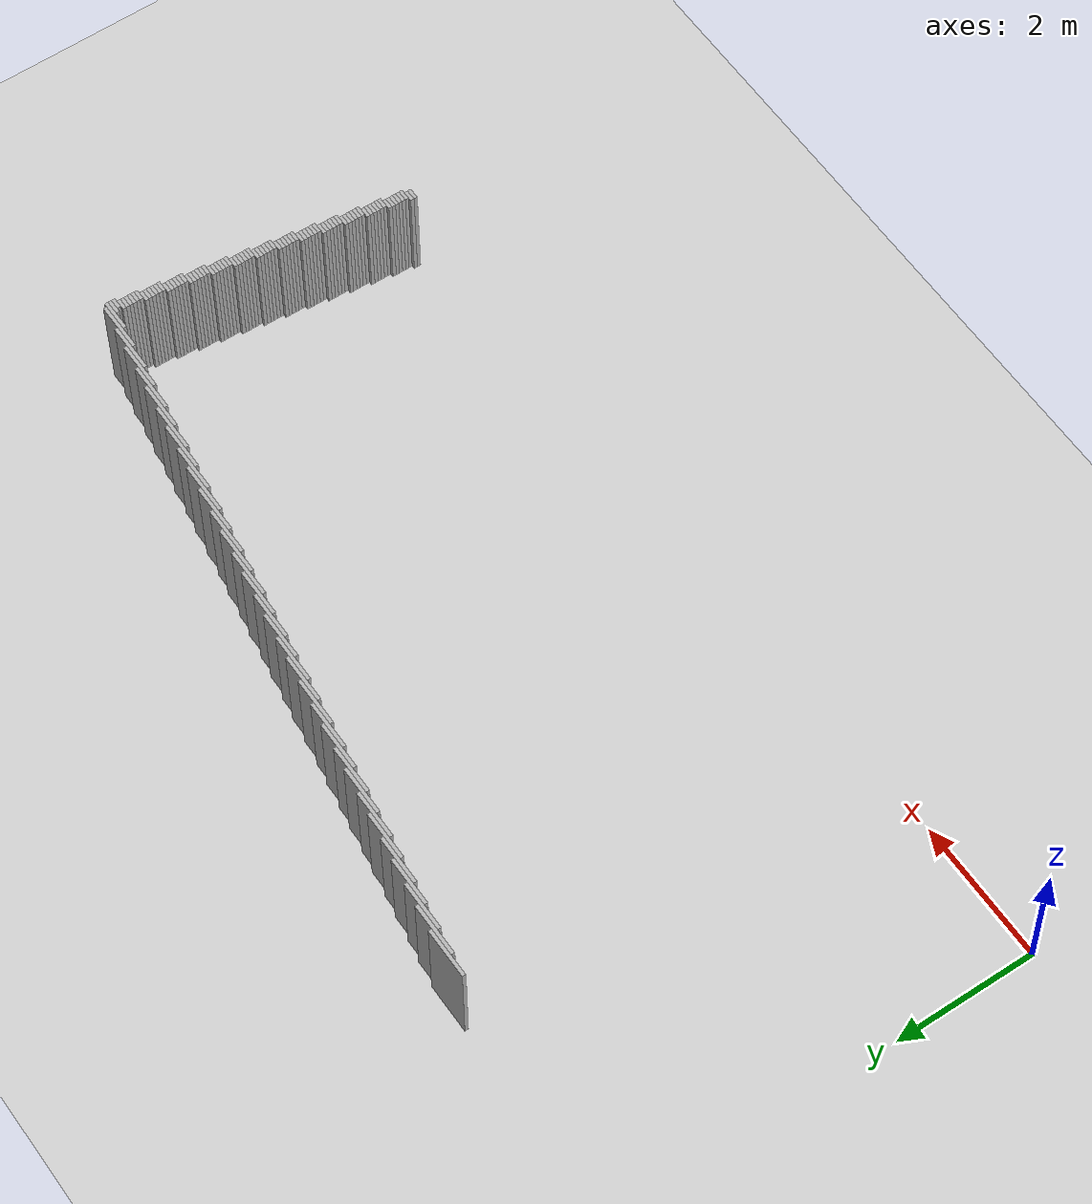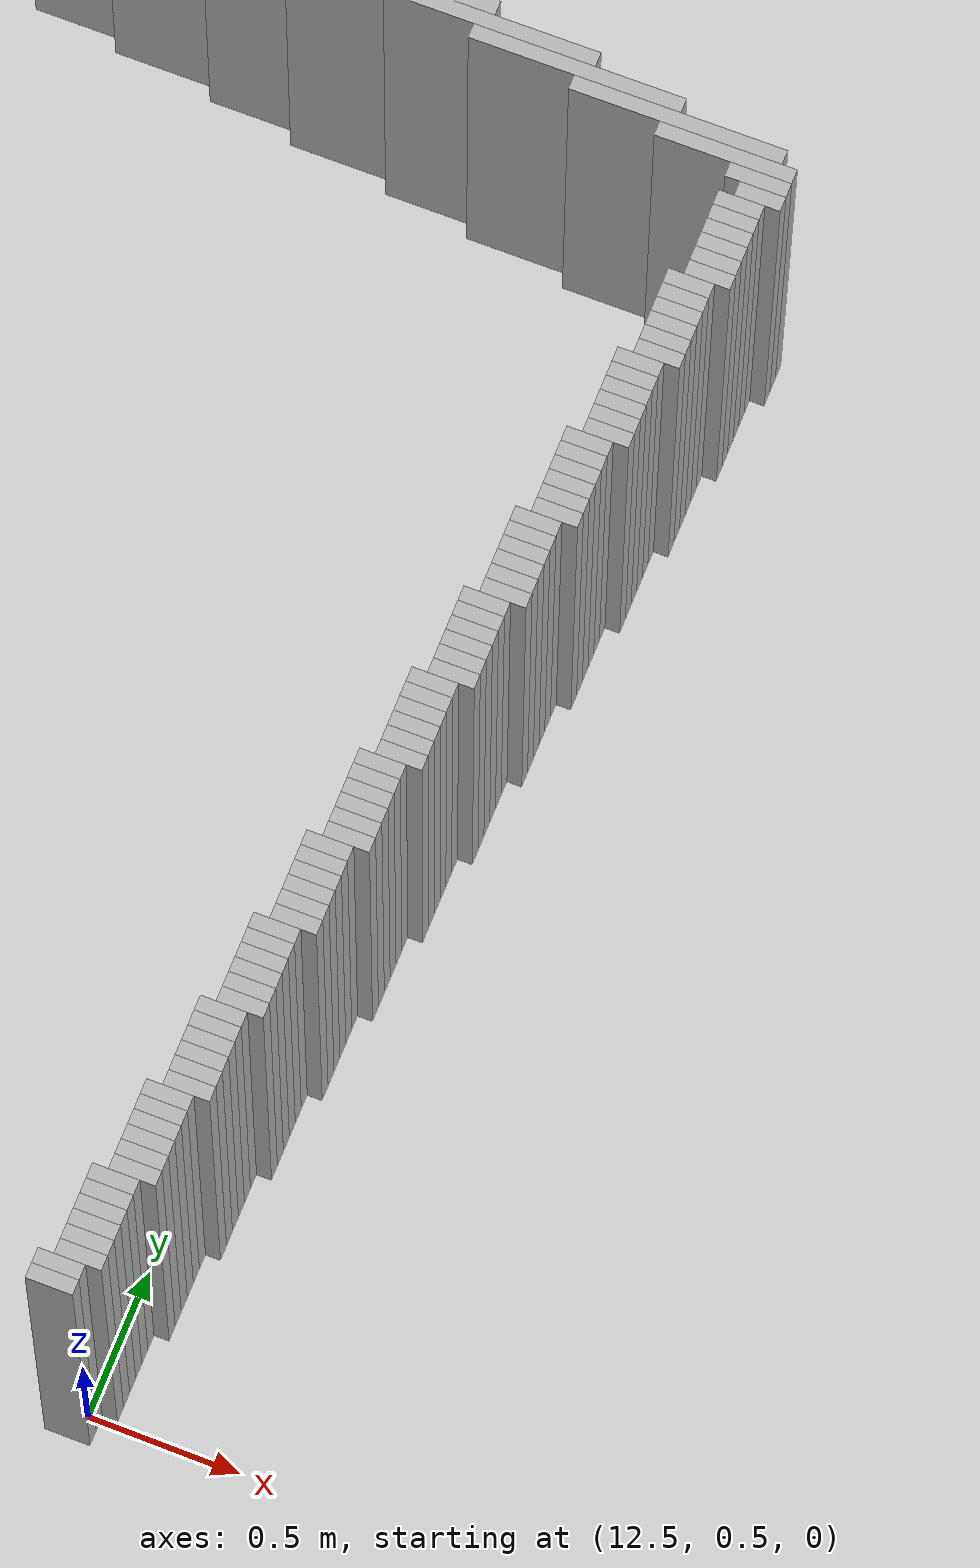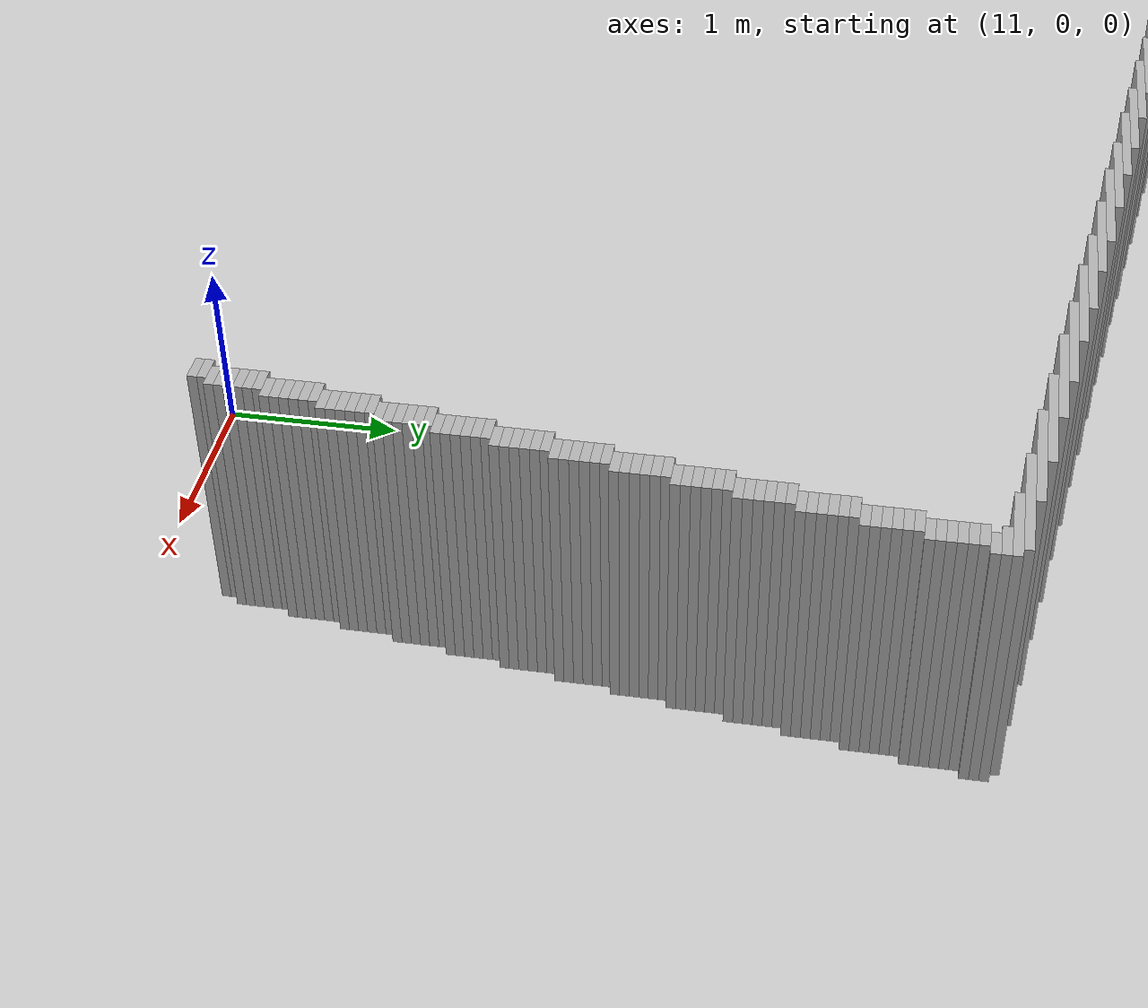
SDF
<sdf version="1.6">
 <world name="df_walled">
  <include><uri>model://sun</uri></include>
  <include><uri>model://ground_plane</uri></include>
  <model name="df_walls">
   <static>true</static>
   <link name="wall_00068">
    <pose>3.3390 6.0410 0.7500 0 0 0</pose>
    <collision name="col"><geometry><box><size>0.7000 0.0500 1.5000</size></box></geometry></collision>
    <visual name="vis">
     <geometry><box><size>0.7000 0.0500 1.5000</size></box></geometry>
     <material><ambient>0.5 0.5 0.5 1</ambient><diffuse>0.7 0.7 0.7 1</diffuse></material>
    </visual>
   </link>
   <link name="wall_00071">
    <pose>3.6640 5.9910 0.7500 0 0 0</pose>
    <collision name="col"><geometry><box><size>0.7500 0.0500 1.5000</size></box></geometry></collision>
    <visual name="vis">
     <geometry><box><size>0.7500 0.0500 1.5000</size></box></geometry>
     <material><ambient>0.5 0.5 0.5 1</ambient><diffuse>0.7 0.7 0.7 1</diffuse></material>
    </visual>
   </link>
   <link name="wall_00074">
    <pose>3.9890 5.9410 0.7500 0 0 0</pose>
    <collision name="col"><geometry><box><size>0.7000 0.0500 1.5000</size></box></geometry></collision>
    <visual name="vis">
     <geometry><box><size>0.7000 0.0500 1.5000</size></box></geometry>
     <material><ambient>0.5 0.5 0.5 1</ambient><diffuse>0.7 0.7 0.7 1</diffuse></material>
    </visual>
   </link>
   <link name="wall_00077">
    <pose>4.3390 5.8910 0.7500 0 0 0</pose>
    <collision name="col"><geometry><box><size>0.7000 0.0500 1.5000</size></box></geometry></collision>
    <visual name="vis">
     <geometry><box><size>0.7000 0.0500 1.5000</size></box></geometry>
     <material><ambient>0.5 0.5 0.5 1</ambient><diffuse>0.7 0.7 0.7 1</diffuse></material>
    </visual>
   </link>
   <link name="wall_00080">
    <pose>4.6390 5.8410 0.7500 0 0 0</pose>
    <collision name="col"><geometry><box><size>0.7000 0.0500 1.5000</size></box></geometry></collision>
    <visual name="vis">
     <geometry><box><size>0.7000 0.0500 1.5000</size></box></geometry>
     <material><ambient>0.5 0.5 0.5 1</ambient><diffuse>0.7 0.7 0.7 1</diffuse></material>
    </visual>
   </link>
   <link name="wall_00083">
    <pose>4.9890 5.7910 0.7500 0 0 0</pose>
    <collision name="col"><geometry><box><size>0.7000 0.0500 1.5000</size></box></geometry></collision>
    <visual name="vis">
     <geometry><box><size>0.7000 0.0500 1.5000</size></box></geometry>
     <material><ambient>0.5 0.5 0.5 1</ambient><diffuse>0.7 0.7 0.7 1</diffuse></material>
    </visual>
   </link>
   <link name="wall_00086">
    <pose>5.2890 5.7410 0.7500 0 0 0</pose>
    <collision name="col"><geometry><box><size>0.7000 0.0500 1.5000</size></box></geometry></collision>
    <visual name="vis">
     <geometry><box><size>0.7000 0.0500 1.5000</size></box></geometry>
     <material><ambient>0.5 0.5 0.5 1</ambient><diffuse>0.7 0.7 0.7 1</diffuse></material>
    </visual>
   </link>
   <link name="wall_00089">
    <pose>5.6390 5.6910 0.7500 0 0 0</pose>
    <collision name="col"><geometry><box><size>0.7000 0.0500 1.5000</size></box></geometry></collision>
    <visual name="vis">
     <geometry><box><size>0.7000 0.0500 1.5000</size></box></geometry>
     <material><ambient>0.5 0.5 0.5 1</ambient><diffuse>0.7 0.7 0.7 1</diffuse></material>
    </visual>
   </link>
   <link name="wall_00092">
    <pose>5.9390 5.6410 0.7500 0 0 0</pose>
    <collision name="col"><geometry><box><size>0.7000 0.0500 1.5000</size></box></geometry></collision>
    <visual name="vis">
     <geometry><box><size>0.7000 0.0500 1.5000</size></box></geometry>
     <material><ambient>0.5 0.5 0.5 1</ambient><diffuse>0.7 0.7 0.7 1</diffuse></material>
    </visual>
   </link>
   <link name="wall_00095">
    <pose>6.2890 5.5910 0.7500 0 0 0</pose>
    <collision name="col"><geometry><box><size>0.7000 0.0500 1.5000</size></box></geometry></collision>
    <visual name="vis">
     <geometry><box><size>0.7000 0.0500 1.5000</size></box></geometry>
     <material><ambient>0.5 0.5 0.5 1</ambient><diffuse>0.7 0.7 0.7 1</diffuse></material>
    </visual>
   </link>
   <link name="wall_00098">
    <pose>6.5890 5.5410 0.7500 0 0 0</pose>
    <collision name="col"><geometry><box><size>0.7000 0.0500 1.5000</size></box></geometry></collision>
    <visual name="vis">
     <geometry><box><size>0.7000 0.0500 1.5000</size></box></geometry>
     <material><ambient>0.5 0.5 0.5 1</ambient><diffuse>0.7 0.7 0.7 1</diffuse></material>
    </visual>
   </link>
   <link name="wall_00101">
    <pose>6.9390 5.4910 0.7500 0 0 0</pose>
    <collision name="col"><geometry><box><size>0.7000 0.0500 1.5000</size></box></geometry></collision>
    <visual name="vis">
     <geometry><box><size>0.7000 0.0500 1.5000</size></box></geometry>
     <material><ambient>0.5 0.5 0.5 1</ambient><diffuse>0.7 0.7 0.7 1</diffuse></material>
    </visual>
   </link>
   <link name="wall_00104">
    <pose>7.2890 5.4410 0.7500 0 0 0</pose>
    <collision name="col"><geometry><box><size>0.7000 0.0500 1.5000</size></box></geometry></collision>
    <visual name="vis">
     <geometry><box><size>0.7000 0.0500 1.5000</size></box></geometry>
     <material><ambient>0.5 0.5 0.5 1</ambient><diffuse>0.7 0.7 0.7 1</diffuse></material>
    </visual>
   </link>
   <link name="wall_00107">
    <pose>7.5890 5.3910 0.7500 0 0 0</pose>
    <collision name="col"><geometry><box><size>0.7000 0.0500 1.5000</size></box></geometry></collision>
    <visual name="vis">
     <geometry><box><size>0.7000 0.0500 1.5000</size></box></geometry>
     <material><ambient>0.5 0.5 0.5 1</ambient><diffuse>0.7 0.7 0.7 1</diffuse></material>
    </visual>
   </link>
   <link name="wall_00110">
    <pose>7.9390 5.3410 0.7500 0 0 0</pose>
    <collision name="col"><geometry><box><size>0.7000 0.0500 1.5000</size></box></geometry></collision>
    <visual name="vis">
     <geometry><box><size>0.7000 0.0500 1.5000</size></box></geometry>
     <material><ambient>0.5 0.5 0.5 1</ambient><diffuse>0.7 0.7 0.7 1</diffuse></material>
    </visual>
   </link>
   <link name="wall_00113">
    <pose>8.2390 5.2910 0.7500 0 0 0</pose>
    <collision name="col"><geometry><box><size>0.7000 0.0500 1.5000</size></box></geometry></collision>
    <visual name="vis">
     <geometry><box><size>0.7000 0.0500 1.5000</size></box></geometry>
     <material><ambient>0.5 0.5 0.5 1</ambient><diffuse>0.7 0.7 0.7 1</diffuse></material>
    </visual>
   </link>
   <link name="wall_00116">
    <pose>8.5890 5.2410 0.7500 0 0 0</pose>
    <collision name="col"><geometry><box><size>0.7000 0.0500 1.5000</size></box></geometry></collision>
    <visual name="vis">
     <geometry><box><size>0.7000 0.0500 1.5000</size></box></geometry>
     <material><ambient>0.5 0.5 0.5 1</ambient><diffuse>0.7 0.7 0.7 1</diffuse></material>
    </visual>
   </link>
   <link name="wall_00119">
    <pose>8.8890 5.1910 0.7500 0 0 0</pose>
    <collision name="col"><geometry><box><size>0.7000 0.0500 1.5000</size></box></geometry></collision>
    <visual name="vis">
     <geometry><box><size>0.7000 0.0500 1.5000</size></box></geometry>
     <material><ambient>0.5 0.5 0.5 1</ambient><diffuse>0.7 0.7 0.7 1</diffuse></material>
    </visual>
   </link>
   <link name="wall_00122">
    <pose>9.2390 5.1410 0.7500 0 0 0</pose>
    <collision name="col"><geometry><box><size>0.7000 0.0500 1.5000</size></box></geometry></collision>
    <visual name="vis">
     <geometry><box><size>0.7000 0.0500 1.5000</size></box></geometry>
     <material><ambient>0.5 0.5 0.5 1</ambient><diffuse>0.7 0.7 0.7 1</diffuse></material>
    </visual>
   </link>
   <link name="wall_00125">
    <pose>9.5390 5.0910 0.7500 0 0 0</pose>
    <collision name="col"><geometry><box><size>0.7000 0.0500 1.5000</size></box></geometry></collision>
    <visual name="vis">
     <geometry><box><size>0.7000 0.0500 1.5000</size></box></geometry>
     <material><ambient>0.5 0.5 0.5 1</ambient><diffuse>0.7 0.7 0.7 1</diffuse></material>
    </visual>
   </link>
   <link name="wall_00128">
    <pose>9.8890 5.0410 0.7500 0 0 0</pose>
    <collision name="col"><geometry><box><size>0.7000 0.0500 1.5000</size></box></geometry></collision>
    <visual name="vis">
     <geometry><box><size>0.7000 0.0500 1.5000</size></box></geometry>
     <material><ambient>0.5 0.5 0.5 1</ambient><diffuse>0.7 0.7 0.7 1</diffuse></material>
    </visual>
   </link>
   <link name="wall_00131">
    <pose>10.2140 4.9910 0.7500 0 0 0</pose>
    <collision name="col"><geometry><box><size>0.7500 0.0500 1.5000</size></box></geometry></collision>
    <visual name="vis">
     <geometry><box><size>0.7500 0.0500 1.5000</size></box></geometry>
     <material><ambient>0.5 0.5 0.5 1</ambient><diffuse>0.7 0.7 0.7 1</diffuse></material>
    </visual>
   </link>
   <link name="wall_00134">
    <pose>10.5390 4.9410 0.7500 0 0 0</pose>
    <collision name="col"><geometry><box><size>0.7000 0.0500 1.5000</size></box></geometry></collision>
    <visual name="vis">
     <geometry><box><size>0.7000 0.0500 1.5000</size></box></geometry>
     <material><ambient>0.5 0.5 0.5 1</ambient><diffuse>0.7 0.7 0.7 1</diffuse></material>
    </visual>
   </link>
   <link name="wall_00137">
    <pose>10.8890 4.8910 0.7500 0 0 0</pose>
    <collision name="col"><geometry><box><size>0.7000 0.0500 1.5000</size></box></geometry></collision>
    <visual name="vis">
     <geometry><box><size>0.7000 0.0500 1.5000</size></box></geometry>
     <material><ambient>0.5 0.5 0.5 1</ambient><diffuse>0.7 0.7 0.7 1</diffuse></material>
    </visual>
   </link>
   <link name="wall_00140">
    <pose>11.1890 4.8410 0.7500 0 0 0</pose>
    <collision name="col"><geometry><box><size>0.7000 0.0500 1.5000</size></box></geometry></collision>
    <visual name="vis">
     <geometry><box><size>0.7000 0.0500 1.5000</size></box></geometry>
     <material><ambient>0.5 0.5 0.5 1</ambient><diffuse>0.7 0.7 0.7 1</diffuse></material>
    </visual>
   </link>
   <link name="wall_00143">
    <pose>11.5390 4.7910 0.7500 0 0 0</pose>
    <collision name="col"><geometry><box><size>0.7000 0.0500 1.5000</size></box></geometry></collision>
    <visual name="vis">
     <geometry><box><size>0.7000 0.0500 1.5000</size></box></geometry>
     <material><ambient>0.5 0.5 0.5 1</ambient><diffuse>0.7 0.7 0.7 1</diffuse></material>
    </visual>
   </link>
   <link name="wall_00146">
    <pose>11.8390 4.7410 0.7500 0 0 0</pose>
    <collision name="col"><geometry><box><size>0.7000 0.0500 1.5000</size></box></geometry></collision>
    <visual name="vis">
     <geometry><box><size>0.7000 0.0500 1.5000</size></box></geometry>
     <material><ambient>0.5 0.5 0.5 1</ambient><diffuse>0.7 0.7 0.7 1</diffuse></material>
    </visual>
   </link>
   <link name="wall_00149">
    <pose>12.1890 4.6910 0.7500 0 0 0</pose>
    <collision name="col"><geometry><box><size>0.7000 0.0500 1.5000</size></box></geometry></collision>
    <visual name="vis">
     <geometry><box><size>0.7000 0.0500 1.5000</size></box></geometry>
     <material><ambient>0.5 0.5 0.5 1</ambient><diffuse>0.7 0.7 0.7 1</diffuse></material>
    </visual>
   </link>
   <link name="wall_00152">
    <pose>12.4890 4.6410 0.7500 0 0 0</pose>
    <collision name="col"><geometry><box><size>0.7000 0.0500 1.5000</size></box></geometry></collision>
    <visual name="vis">
     <geometry><box><size>0.7000 0.0500 1.5000</size></box></geometry>
     <material><ambient>0.5 0.5 0.5 1</ambient><diffuse>0.7 0.7 0.7 1</diffuse></material>
    </visual>
   </link>
   <link name="wall_00155">
    <pose>12.8390 4.5910 0.7500 0 0 0</pose>
    <collision name="col"><geometry><box><size>0.7000 0.0500 1.5000</size></box></geometry></collision>
    <visual name="vis">
     <geometry><box><size>0.7000 0.0500 1.5000</size></box></geometry>
     <material><ambient>0.5 0.5 0.5 1</ambient><diffuse>0.7 0.7 0.7 1</diffuse></material>
    </visual>
   </link>
   <link name="wall_00158">
    <pose>13.0140 4.5410 0.7500 0 0 0</pose>
    <collision name="col"><geometry><box><size>0.4500 0.0500 1.5000</size></box></geometry></collision>
    <visual name="vis">
     <geometry><box><size>0.4500 0.0500 1.5000</size></box></geometry>
     <material><ambient>0.5 0.5 0.5 1</ambient><diffuse>0.7 0.7 0.7 1</diffuse></material>
    </visual>
   </link>
   <link name="wall_00161">
    <pose>13.1390 4.4910 0.7500 0 0 0</pose>
    <collision name="col"><geometry><box><size>0.2000 0.0500 1.5000</size></box></geometry></collision>
    <visual name="vis">
     <geometry><box><size>0.2000 0.0500 1.5000</size></box></geometry>
     <material><ambient>0.5 0.5 0.5 1</ambient><diffuse>0.7 0.7 0.7 1</diffuse></material>
    </visual>
   </link>
   <link name="wall_00164">
    <pose>13.1640 4.4410 0.7500 0 0 0</pose>
    <collision name="col"><geometry><box><size>0.1500 0.0500 1.5000</size></box></geometry></collision>
    <visual name="vis">
     <geometry><box><size>0.1500 0.0500 1.5000</size></box></geometry>
     <material><ambient>0.5 0.5 0.5 1</ambient><diffuse>0.7 0.7 0.7 1</diffuse></material>
    </visual>
   </link>
   <link name="wall_00167">
    <pose>13.1140 4.3910 0.7500 0 0 0</pose>
    <collision name="col"><geometry><box><size>0.1500 0.0500 1.5000</size></box></geometry></collision>
    <visual name="vis">
     <geometry><box><size>0.1500 0.0500 1.5000</size></box></geometry>
     <material><ambient>0.5 0.5 0.5 1</ambient><diffuse>0.7 0.7 0.7 1</diffuse></material>
    </visual>
   </link>
   <link name="wall_00170">
    <pose>13.1140 4.3410 0.7500 0 0 0</pose>
    <collision name="col"><geometry><box><size>0.1500 0.0500 1.5000</size></box></geometry></collision>
    <visual name="vis">
     <geometry><box><size>0.1500 0.0500 1.5000</size></box></geometry>
     <material><ambient>0.5 0.5 0.5 1</ambient><diffuse>0.7 0.7 0.7 1</diffuse></material>
    </visual>
   </link>
   <link name="wall_00172">
    <pose>13.1140 4.2910 0.7500 0 0 0</pose>
    <collision name="col"><geometry><box><size>0.1500 0.0500 1.5000</size></box></geometry></collision>
    <visual name="vis">
     <geometry><box><size>0.1500 0.0500 1.5000</size></box></geometry>
     <material><ambient>0.5 0.5 0.5 1</ambient><diffuse>0.7 0.7 0.7 1</diffuse></material>
    </visual>
   </link>
   <link name="wall_00174">
    <pose>13.1140 4.2410 0.7500 0 0 0</pose>
    <collision name="col"><geometry><box><size>0.1500 0.0500 1.5000</size></box></geometry></collision>
    <visual name="vis">
     <geometry><box><size>0.1500 0.0500 1.5000</size></box></geometry>
     <material><ambient>0.5 0.5 0.5 1</ambient><diffuse>0.7 0.7 0.7 1</diffuse></material>
    </visual>
   </link>
   <link name="wall_00176">
    <pose>13.1140 4.1910 0.7500 0 0 0</pose>
    <collision name="col"><geometry><box><size>0.1500 0.0500 1.5000</size></box></geometry></collision>
    <visual name="vis">
     <geometry><box><size>0.1500 0.0500 1.5000</size></box></geometry>
     <material><ambient>0.5 0.5 0.5 1</ambient><diffuse>0.7 0.7 0.7 1</diffuse></material>
    </visual>
   </link>
   <link name="wall_00178">
    <pose>13.1140 4.1410 0.7500 0 0 0</pose>
    <collision name="col"><geometry><box><size>0.1500 0.0500 1.5000</size></box></geometry></collision>
    <visual name="vis">
     <geometry><box><size>0.1500 0.0500 1.5000</size></box></geometry>
     <material><ambient>0.5 0.5 0.5 1</ambient><diffuse>0.7 0.7 0.7 1</diffuse></material>
    </visual>
   </link>
   <link name="wall_00180">
    <pose>13.0640 4.0910 0.7500 0 0 0</pose>
    <collision name="col"><geometry><box><size>0.1500 0.0500 1.5000</size></box></geometry></collision>
    <visual name="vis">
     <geometry><box><size>0.1500 0.0500 1.5000</size></box></geometry>
     <material><ambient>0.5 0.5 0.5 1</ambient><diffuse>0.7 0.7 0.7 1</diffuse></material>
    </visual>
   </link>
   <link name="wall_00182">
    <pose>13.0640 4.0410 0.7500 0 0 0</pose>
    <collision name="col"><geometry><box><size>0.1500 0.0500 1.5000</size></box></geometry></collision>
    <visual name="vis">
     <geometry><box><size>0.1500 0.0500 1.5000</size></box></geometry>
     <material><ambient>0.5 0.5 0.5 1</ambient><diffuse>0.7 0.7 0.7 1</diffuse></material>
    </visual>
   </link>
   <link name="wall_00184">
    <pose>13.0640 3.9910 0.7500 0 0 0</pose>
    <collision name="col"><geometry><box><size>0.1500 0.0500 1.5000</size></box></geometry></collision>
    <visual name="vis">
     <geometry><box><size>0.1500 0.0500 1.5000</size></box></geometry>
     <material><ambient>0.5 0.5 0.5 1</ambient><diffuse>0.7 0.7 0.7 1</diffuse></material>
    </visual>
   </link>
   <link name="wall_00186">
    <pose>13.0640 3.9410 0.7500 0 0 0</pose>
    <collision name="col"><geometry><box><size>0.1500 0.0500 1.5000</size></box></geometry></collision>
    <visual name="vis">
     <geometry><box><size>0.1500 0.0500 1.5000</size></box></geometry>
     <material><ambient>0.5 0.5 0.5 1</ambient><diffuse>0.7 0.7 0.7 1</diffuse></material>
    </visual>
   </link>
   <link name="wall_00188">
    <pose>13.0640 3.8910 0.7500 0 0 0</pose>
    <collision name="col"><geometry><box><size>0.1500 0.0500 1.5000</size></box></geometry></collision>
    <visual name="vis">
     <geometry><box><size>0.1500 0.0500 1.5000</size></box></geometry>
     <material><ambient>0.5 0.5 0.5 1</ambient><diffuse>0.7 0.7 0.7 1</diffuse></material>
    </visual>
   </link>
   <link name="wall_00190">
    <pose>13.0640 3.8410 0.7500 0 0 0</pose>
    <collision name="col"><geometry><box><size>0.1500 0.0500 1.5000</size></box></geometry></collision>
    <visual name="vis">
     <geometry><box><size>0.1500 0.0500 1.5000</size></box></geometry>
     <material><ambient>0.5 0.5 0.5 1</ambient><diffuse>0.7 0.7 0.7 1</diffuse></material>
    </visual>
   </link>
   <link name="wall_00192">
    <pose>13.0140 3.7910 0.7500 0 0 0</pose>
    <collision name="col"><geometry><box><size>0.1500 0.0500 1.5000</size></box></geometry></collision>
    <visual name="vis">
     <geometry><box><size>0.1500 0.0500 1.5000</size></box></geometry>
     <material><ambient>0.5 0.5 0.5 1</ambient><diffuse>0.7 0.7 0.7 1</diffuse></material>
    </visual>
   </link>
   <link name="wall_00194">
    <pose>13.0140 3.7410 0.7500 0 0 0</pose>
    <collision name="col"><geometry><box><size>0.1500 0.0500 1.5000</size></box></geometry></collision>
    <visual name="vis">
     <geometry><box><size>0.1500 0.0500 1.5000</size></box></geometry>
     <material><ambient>0.5 0.5 0.5 1</ambient><diffuse>0.7 0.7 0.7 1</diffuse></material>
    </visual>
   </link>
   <link name="wall_00196">
    <pose>13.0140 3.6910 0.7500 0 0 0</pose>
    <collision name="col"><geometry><box><size>0.1500 0.0500 1.5000</size></box></geometry></collision>
    <visual name="vis">
     <geometry><box><size>0.1500 0.0500 1.5000</size></box></geometry>
     <material><ambient>0.5 0.5 0.5 1</ambient><diffuse>0.7 0.7 0.7 1</diffuse></material>
    </visual>
   </link>
   <link name="wall_00198">
    <pose>13.0140 3.6410 0.7500 0 0 0</pose>
    <collision name="col"><geometry><box><size>0.1500 0.0500 1.5000</size></box></geometry></collision>
    <visual name="vis">
     <geometry><box><size>0.1500 0.0500 1.5000</size></box></geometry>
     <material><ambient>0.5 0.5 0.5 1</ambient><diffuse>0.7 0.7 0.7 1</diffuse></material>
    </visual>
   </link>
   <link name="wall_00200">
    <pose>13.0140 3.5910 0.7500 0 0 0</pose>
    <collision name="col"><geometry><box><size>0.1500 0.0500 1.5000</size></box></geometry></collision>
    <visual name="vis">
     <geometry><box><size>0.1500 0.0500 1.5000</size></box></geometry>
     <material><ambient>0.5 0.5 0.5 1</ambient><diffuse>0.7 0.7 0.7 1</diffuse></material>
    </visual>
   </link>
   <link name="wall_00202">
    <pose>13.0140 3.5410 0.7500 0 0 0</pose>
    <collision name="col"><geometry><box><size>0.1500 0.0500 1.5000</size></box></geometry></collision>
    <visual name="vis">
     <geometry><box><size>0.1500 0.0500 1.5000</size></box></geometry>
     <material><ambient>0.5 0.5 0.5 1</ambient><diffuse>0.7 0.7 0.7 1</diffuse></material>
    </visual>
   </link>
   <link name="wall_00204">
    <pose>12.9640 3.4910 0.7500 0 0 0</pose>
    <collision name="col"><geometry><box><size>0.1500 0.0500 1.5000</size></box></geometry></collision>
    <visual name="vis">
     <geometry><box><size>0.1500 0.0500 1.5000</size></box></geometry>
     <material><ambient>0.5 0.5 0.5 1</ambient><diffuse>0.7 0.7 0.7 1</diffuse></material>
    </visual>
   </link>
   <link name="wall_00206">
    <pose>12.9640 3.4410 0.7500 0 0 0</pose>
    <collision name="col"><geometry><box><size>0.1500 0.0500 1.5000</size></box></geometry></collision>
    <visual name="vis">
     <geometry><box><size>0.1500 0.0500 1.5000</size></box></geometry>
     <material><ambient>0.5 0.5 0.5 1</ambient><diffuse>0.7 0.7 0.7 1</diffuse></material>
    </visual>
   </link>
   <link name="wall_00208">
    <pose>12.9640 3.3910 0.7500 0 0 0</pose>
    <collision name="col"><geometry><box><size>0.1500 0.0500 1.5000</size></box></geometry></collision>
    <visual name="vis">
     <geometry><box><size>0.1500 0.0500 1.5000</size></box></geometry>
     <material><ambient>0.5 0.5 0.5 1</ambient><diffuse>0.7 0.7 0.7 1</diffuse></material>
    </visual>
   </link>
   <link name="wall_00210">
    <pose>12.9640 3.3410 0.7500 0 0 0</pose>
    <collision name="col"><geometry><box><size>0.1500 0.0500 1.5000</size></box></geometry></collision>
    <visual name="vis">
     <geometry><box><size>0.1500 0.0500 1.5000</size></box></geometry>
     <material><ambient>0.5 0.5 0.5 1</ambient><diffuse>0.7 0.7 0.7 1</diffuse></material>
    </visual>
   </link>
   <link name="wall_00212">
    <pose>12.9640 3.2910 0.7500 0 0 0</pose>
    <collision name="col"><geometry><box><size>0.1500 0.0500 1.5000</size></box></geometry></collision>
    <visual name="vis">
     <geometry><box><size>0.1500 0.0500 1.5000</size></box></geometry>
     <material><ambient>0.5 0.5 0.5 1</ambient><diffuse>0.7 0.7 0.7 1</diffuse></material>
    </visual>
   </link>
   <link name="wall_00214">
    <pose>12.9640 3.2410 0.7500 0 0 0</pose>
    <collision name="col"><geometry><box><size>0.1500 0.0500 1.5000</size></box></geometry></collision>
    <visual name="vis">
     <geometry><box><size>0.1500 0.0500 1.5000</size></box></geometry>
     <material><ambient>0.5 0.5 0.5 1</ambient><diffuse>0.7 0.7 0.7 1</diffuse></material>
    </visual>
   </link>
   <link name="wall_00216">
    <pose>12.9140 3.1910 0.7500 0 0 0</pose>
    <collision name="col"><geometry><box><size>0.1500 0.0500 1.5000</size></box></geometry></collision>
    <visual name="vis">
     <geometry><box><size>0.1500 0.0500 1.5000</size></box></geometry>
     <material><ambient>0.5 0.5 0.5 1</ambient><diffuse>0.7 0.7 0.7 1</diffuse></material>
    </visual>
   </link>
   <link name="wall_00218">
    <pose>12.9140 3.1410 0.7500 0 0 0</pose>
    <collision name="col"><geometry><box><size>0.1500 0.0500 1.5000</size></box></geometry></collision>
    <visual name="vis">
     <geometry><box><size>0.1500 0.0500 1.5000</size></box></geometry>
     <material><ambient>0.5 0.5 0.5 1</ambient><diffuse>0.7 0.7 0.7 1</diffuse></material>
    </visual>
   </link>
   <link name="wall_00220">
    <pose>12.9140 3.0910 0.7500 0 0 0</pose>
    <collision name="col"><geometry><box><size>0.1500 0.0500 1.5000</size></box></geometry></collision>
    <visual name="vis">
     <geometry><box><size>0.1500 0.0500 1.5000</size></box></geometry>
     <material><ambient>0.5 0.5 0.5 1</ambient><diffuse>0.7 0.7 0.7 1</diffuse></material>
    </visual>
   </link>
   <link name="wall_00222">
    <pose>12.9140 3.0410 0.7500 0 0 0</pose>
    <collision name="col"><geometry><box><size>0.1500 0.0500 1.5000</size></box></geometry></collision>
    <visual name="vis">
     <geometry><box><size>0.1500 0.0500 1.5000</size></box></geometry>
     <material><ambient>0.5 0.5 0.5 1</ambient><diffuse>0.7 0.7 0.7 1</diffuse></material>
    </visual>
   </link>
   <link name="wall_00224">
    <pose>12.9140 2.9910 0.7500 0 0 0</pose>
    <collision name="col"><geometry><box><size>0.1500 0.0500 1.5000</size></box></geometry></collision>
    <visual name="vis">
     <geometry><box><size>0.1500 0.0500 1.5000</size></box></geometry>
     <material><ambient>0.5 0.5 0.5 1</ambient><diffuse>0.7 0.7 0.7 1</diffuse></material>
    </visual>
   </link>
   <link name="wall_00226">
    <pose>12.9140 2.9410 0.7500 0 0 0</pose>
    <collision name="col"><geometry><box><size>0.1500 0.0500 1.5000</size></box></geometry></collision>
    <visual name="vis">
     <geometry><box><size>0.1500 0.0500 1.5000</size></box></geometry>
     <material><ambient>0.5 0.5 0.5 1</ambient><diffuse>0.7 0.7 0.7 1</diffuse></material>
    </visual>
   </link>
   <link name="wall_00228">
    <pose>12.8640 2.8910 0.7500 0 0 0</pose>
    <collision name="col"><geometry><box><size>0.1500 0.0500 1.5000</size></box></geometry></collision>
    <visual name="vis">
     <geometry><box><size>0.1500 0.0500 1.5000</size></box></geometry>
     <material><ambient>0.5 0.5 0.5 1</ambient><diffuse>0.7 0.7 0.7 1</diffuse></material>
    </visual>
   </link>
   <link name="wall_00230">
    <pose>12.8640 2.8410 0.7500 0 0 0</pose>
    <collision name="col"><geometry><box><size>0.1500 0.0500 1.5000</size></box></geometry></collision>
    <visual name="vis">
     <geometry><box><size>0.1500 0.0500 1.5000</size></box></geometry>
     <material><ambient>0.5 0.5 0.5 1</ambient><diffuse>0.7 0.7 0.7 1</diffuse></material>
    </visual>
   </link>
   <link name="wall_00232">
    <pose>12.8640 2.7910 0.7500 0 0 0</pose>
    <collision name="col"><geometry><box><size>0.1500 0.0500 1.5000</size></box></geometry></collision>
    <visual name="vis">
     <geometry><box><size>0.1500 0.0500 1.5000</size></box></geometry>
     <material><ambient>0.5 0.5 0.5 1</ambient><diffuse>0.7 0.7 0.7 1</diffuse></material>
    </visual>
   </link>
   <link name="wall_00234">
    <pose>12.8640 2.7410 0.7500 0 0 0</pose>
    <collision name="col"><geometry><box><size>0.1500 0.0500 1.5000</size></box></geometry></collision>
    <visual name="vis">
     <geometry><box><size>0.1500 0.0500 1.5000</size></box></geometry>
     <material><ambient>0.5 0.5 0.5 1</ambient><diffuse>0.7 0.7 0.7 1</diffuse></material>
    </visual>
   </link>
   <link name="wall_00236">
    <pose>12.8640 2.6910 0.7500 0 0 0</pose>
    <collision name="col"><geometry><box><size>0.1500 0.0500 1.5000</size></box></geometry></collision>
    <visual name="vis">
     <geometry><box><size>0.1500 0.0500 1.5000</size></box></geometry>
     <material><ambient>0.5 0.5 0.5 1</ambient><diffuse>0.7 0.7 0.7 1</diffuse></material>
    </visual>
   </link>
   <link name="wall_00238">
    <pose>12.8640 2.6410 0.7500 0 0 0</pose>
    <collision name="col"><geometry><box><size>0.1500 0.0500 1.5000</size></box></geometry></collision>
    <visual name="vis">
     <geometry><box><size>0.1500 0.0500 1.5000</size></box></geometry>
     <material><ambient>0.5 0.5 0.5 1</ambient><diffuse>0.7 0.7 0.7 1</diffuse></material>
    </visual>
   </link>
   <link name="wall_00240">
    <pose>12.8140 2.5910 0.7500 0 0 0</pose>
    <collision name="col"><geometry><box><size>0.1500 0.0500 1.5000</size></box></geometry></collision>
    <visual name="vis">
     <geometry><box><size>0.1500 0.0500 1.5000</size></box></geometry>
     <material><ambient>0.5 0.5 0.5 1</ambient><diffuse>0.7 0.7 0.7 1</diffuse></material>
    </visual>
   </link>
   <link name="wall_00242">
    <pose>12.8140 2.5410 0.7500 0 0 0</pose>
    <collision name="col"><geometry><box><size>0.1500 0.0500 1.5000</size></box></geometry></collision>
    <visual name="vis">
     <geometry><box><size>0.1500 0.0500 1.5000</size></box></geometry>
     <material><ambient>0.5 0.5 0.5 1</ambient><diffuse>0.7 0.7 0.7 1</diffuse></material>
    </visual>
   </link>
   <link name="wall_00244">
    <pose>12.8140 2.4910 0.7500 0 0 0</pose>
    <collision name="col"><geometry><box><size>0.1500 0.0500 1.5000</size></box></geometry></collision>
    <visual name="vis">
     <geometry><box><size>0.1500 0.0500 1.5000</size></box></geometry>
     <material><ambient>0.5 0.5 0.5 1</ambient><diffuse>0.7 0.7 0.7 1</diffuse></material>
    </visual>
   </link>
   <link name="wall_00246">
    <pose>12.8140 2.4410 0.7500 0 0 0</pose>
    <collision name="col"><geometry><box><size>0.1500 0.0500 1.5000</size></box></geometry></collision>
    <visual name="vis">
     <geometry><box><size>0.1500 0.0500 1.5000</size></box></geometry>
     <material><ambient>0.5 0.5 0.5 1</ambient><diffuse>0.7 0.7 0.7 1</diffuse></material>
    </visual>
   </link>
   <link name="wall_00248">
    <pose>12.8140 2.3910 0.7500 0 0 0</pose>
    <collision name="col"><geometry><box><size>0.1500 0.0500 1.5000</size></box></geometry></collision>
    <visual name="vis">
     <geometry><box><size>0.1500 0.0500 1.5000</size></box></geometry>
     <material><ambient>0.5 0.5 0.5 1</ambient><diffuse>0.7 0.7 0.7 1</diffuse></material>
    </visual>
   </link>
   <link name="wall_00250">
    <pose>12.8140 2.3410 0.7500 0 0 0</pose>
    <collision name="col"><geometry><box><size>0.1500 0.0500 1.5000</size></box></geometry></collision>
    <visual name="vis">
     <geometry><box><size>0.1500 0.0500 1.5000</size></box></geometry>
     <material><ambient>0.5 0.5 0.5 1</ambient><diffuse>0.7 0.7 0.7 1</diffuse></material>
    </visual>
   </link>
   <link name="wall_00252">
    <pose>12.7640 2.2910 0.7500 0 0 0</pose>
    <collision name="col"><geometry><box><size>0.1500 0.0500 1.5000</size></box></geometry></collision>
    <visual name="vis">
     <geometry><box><size>0.1500 0.0500 1.5000</size></box></geometry>
     <material><ambient>0.5 0.5 0.5 1</ambient><diffuse>0.7 0.7 0.7 1</diffuse></material>
    </visual>
   </link>
   <link name="wall_00254">
    <pose>12.7640 2.2410 0.7500 0 0 0</pose>
    <collision name="col"><geometry><box><size>0.1500 0.0500 1.5000</size></box></geometry></collision>
    <visual name="vis">
     <geometry><box><size>0.1500 0.0500 1.5000</size></box></geometry>
     <material><ambient>0.5 0.5 0.5 1</ambient><diffuse>0.7 0.7 0.7 1</diffuse></material>
    </visual>
   </link>
   <link name="wall_00256">
    <pose>12.7640 2.1910 0.7500 0 0 0</pose>
    <collision name="col"><geometry><box><size>0.1500 0.0500 1.5000</size></box></geometry></collision>
    <visual name="vis">
     <geometry><box><size>0.1500 0.0500 1.5000</size></box></geometry>
     <material><ambient>0.5 0.5 0.5 1</ambient><diffuse>0.7 0.7 0.7 1</diffuse></material>
    </visual>
   </link>
   <link name="wall_00258">
    <pose>12.7640 2.1410 0.7500 0 0 0</pose>
    <collision name="col"><geometry><box><size>0.1500 0.0500 1.5000</size></box></geometry></collision>
    <visual name="vis">
     <geometry><box><size>0.1500 0.0500 1.5000</size></box></geometry>
     <material><ambient>0.5 0.5 0.5 1</ambient><diffuse>0.7 0.7 0.7 1</diffuse></material>
    </visual>
   </link>
   <link name="wall_00260">
    <pose>12.7640 2.0910 0.7500 0 0 0</pose>
    <collision name="col"><geometry><box><size>0.1500 0.0500 1.5000</size></box></geometry></collision>
    <visual name="vis">
     <geometry><box><size>0.1500 0.0500 1.5000</size></box></geometry>
     <material><ambient>0.5 0.5 0.5 1</ambient><diffuse>0.7 0.7 0.7 1</diffuse></material>
    </visual>
   </link>
   <link name="wall_00262">
    <pose>12.7640 2.0410 0.7500 0 0 0</pose>
    <collision name="col"><geometry><box><size>0.1500 0.0500 1.5000</size></box></geometry></collision>
    <visual name="vis">
     <geometry><box><size>0.1500 0.0500 1.5000</size></box></geometry>
     <material><ambient>0.5 0.5 0.5 1</ambient><diffuse>0.7 0.7 0.7 1</diffuse></material>
    </visual>
   </link>
   <link name="wall_00264">
    <pose>12.7140 1.9910 0.7500 0 0 0</pose>
    <collision name="col"><geometry><box><size>0.1500 0.0500 1.5000</size></box></geometry></collision>
    <visual name="vis">
     <geometry><box><size>0.1500 0.0500 1.5000</size></box></geometry>
     <material><ambient>0.5 0.5 0.5 1</ambient><diffuse>0.7 0.7 0.7 1</diffuse></material>
    </visual>
   </link>
   <link name="wall_00266">
    <pose>12.7140 1.9410 0.7500 0 0 0</pose>
    <collision name="col"><geometry><box><size>0.1500 0.0500 1.5000</size></box></geometry></collision>
    <visual name="vis">
     <geometry><box><size>0.1500 0.0500 1.5000</size></box></geometry>
     <material><ambient>0.5 0.5 0.5 1</ambient><diffuse>0.7 0.7 0.7 1</diffuse></material>
    </visual>
   </link>
   <link name="wall_00268">
    <pose>12.7140 1.8910 0.7500 0 0 0</pose>
    <collision name="col"><geometry><box><size>0.1500 0.0500 1.5000</size></box></geometry></collision>
    <visual name="vis">
     <geometry><box><size>0.1500 0.0500 1.5000</size></box></geometry>
     <material><ambient>0.5 0.5 0.5 1</ambient><diffuse>0.7 0.7 0.7 1</diffuse></material>
    </visual>
   </link>
   <link name="wall_00270">
    <pose>12.7140 1.8410 0.7500 0 0 0</pose>
    <collision name="col"><geometry><box><size>0.1500 0.0500 1.5000</size></box></geometry></collision>
    <visual name="vis">
     <geometry><box><size>0.1500 0.0500 1.5000</size></box></geometry>
     <material><ambient>0.5 0.5 0.5 1</ambient><diffuse>0.7 0.7 0.7 1</diffuse></material>
    </visual>
   </link>
   <link name="wall_00272">
    <pose>12.7140 1.7910 0.7500 0 0 0</pose>
    <collision name="col"><geometry><box><size>0.1500 0.0500 1.5000</size></box></geometry></collision>
    <visual name="vis">
     <geometry><box><size>0.1500 0.0500 1.5000</size></box></geometry>
     <material><ambient>0.5 0.5 0.5 1</ambient><diffuse>0.7 0.7 0.7 1</diffuse></material>
    </visual>
   </link>
   <link name="wall_00274">
    <pose>12.7140 1.7410 0.7500 0 0 0</pose>
    <collision name="col"><geometry><box><size>0.1500 0.0500 1.5000</size></box></geometry></collision>
    <visual name="vis">
     <geometry><box><size>0.1500 0.0500 1.5000</size></box></geometry>
     <material><ambient>0.5 0.5 0.5 1</ambient><diffuse>0.7 0.7 0.7 1</diffuse></material>
    </visual>
   </link>
   <link name="wall_00276">
    <pose>12.6640 1.6910 0.7500 0 0 0</pose>
    <collision name="col"><geometry><box><size>0.1500 0.0500 1.5000</size></box></geometry></collision>
    <visual name="vis">
     <geometry><box><size>0.1500 0.0500 1.5000</size></box></geometry>
     <material><ambient>0.5 0.5 0.5 1</ambient><diffuse>0.7 0.7 0.7 1</diffuse></material>
    </visual>
   </link>
   <link name="wall_00278">
    <pose>12.6640 1.6410 0.7500 0 0 0</pose>
    <collision name="col"><geometry><box><size>0.1500 0.0500 1.5000</size></box></geometry></collision>
    <visual name="vis">
     <geometry><box><size>0.1500 0.0500 1.5000</size></box></geometry>
     <material><ambient>0.5 0.5 0.5 1</ambient><diffuse>0.7 0.7 0.7 1</diffuse></material>
    </visual>
   </link>
   <link name="wall_00280">
    <pose>12.6640 1.5910 0.7500 0 0 0</pose>
    <collision name="col"><geometry><box><size>0.1500 0.0500 1.5000</size></box></geometry></collision>
    <visual name="vis">
     <geometry><box><size>0.1500 0.0500 1.5000</size></box></geometry>
     <material><ambient>0.5 0.5 0.5 1</ambient><diffuse>0.7 0.7 0.7 1</diffuse></material>
    </visual>
   </link>
   <link name="wall_00282">
    <pose>12.6640 1.5410 0.7500 0 0 0</pose>
    <collision name="col"><geometry><box><size>0.1500 0.0500 1.5000</size></box></geometry></collision>
    <visual name="vis">
     <geometry><box><size>0.1500 0.0500 1.5000</size></box></geometry>
     <material><ambient>0.5 0.5 0.5 1</ambient><diffuse>0.7 0.7 0.7 1</diffuse></material>
    </visual>
   </link>
   <link name="wall_00284">
    <pose>12.6640 1.4910 0.7500 0 0 0</pose>
    <collision name="col"><geometry><box><size>0.1500 0.0500 1.5000</size></box></geometry></collision>
    <visual name="vis">
     <geometry><box><size>0.1500 0.0500 1.5000</size></box></geometry>
     <material><ambient>0.5 0.5 0.5 1</ambient><diffuse>0.7 0.7 0.7 1</diffuse></material>
    </visual>
   </link>
   <link name="wall_00286">
    <pose>12.6640 1.4410 0.7500 0 0 0</pose>
    <collision name="col"><geometry><box><size>0.1500 0.0500 1.5000</size></box></geometry></collision>
    <visual name="vis">
     <geometry><box><size>0.1500 0.0500 1.5000</size></box></geometry>
     <material><ambient>0.5 0.5 0.5 1</ambient><diffuse>0.7 0.7 0.7 1</diffuse></material>
    </visual>
   </link>
   <link name="wall_00288">
    <pose>12.6140 1.3910 0.7500 0 0 0</pose>
    <collision name="col"><geometry><box><size>0.1500 0.0500 1.5000</size></box></geometry></collision>
    <visual name="vis">
     <geometry><box><size>0.1500 0.0500 1.5000</size></box></geometry>
     <material><ambient>0.5 0.5 0.5 1</ambient><diffuse>0.7 0.7 0.7 1</diffuse></material>
    </visual>
   </link>
   <link name="wall_00290">
    <pose>12.6140 1.3410 0.7500 0 0 0</pose>
    <collision name="col"><geometry><box><size>0.1500 0.0500 1.5000</size></box></geometry></collision>
    <visual name="vis">
     <geometry><box><size>0.1500 0.0500 1.5000</size></box></geometry>
     <material><ambient>0.5 0.5 0.5 1</ambient><diffuse>0.7 0.7 0.7 1</diffuse></material>
    </visual>
   </link>
   <link name="wall_00292">
    <pose>12.6140 1.2910 0.7500 0 0 0</pose>
    <collision name="col"><geometry><box><size>0.1500 0.0500 1.5000</size></box></geometry></collision>
    <visual name="vis">
     <geometry><box><size>0.1500 0.0500 1.5000</size></box></geometry>
     <material><ambient>0.5 0.5 0.5 1</ambient><diffuse>0.7 0.7 0.7 1</diffuse></material>
    </visual>
   </link>
   <link name="wall_00294">
    <pose>12.6140 1.2410 0.7500 0 0 0</pose>
    <collision name="col"><geometry><box><size>0.1500 0.0500 1.5000</size></box></geometry></collision>
    <visual name="vis">
     <geometry><box><size>0.1500 0.0500 1.5000</size></box></geometry>
     <material><ambient>0.5 0.5 0.5 1</ambient><diffuse>0.7 0.7 0.7 1</diffuse></material>
    </visual>
   </link>
   <link name="wall_00296">
    <pose>12.6140 1.1910 0.7500 0 0 0</pose>
    <collision name="col"><geometry><box><size>0.1500 0.0500 1.5000</size></box></geometry></collision>
    <visual name="vis">
     <geometry><box><size>0.1500 0.0500 1.5000</size></box></geometry>
     <material><ambient>0.5 0.5 0.5 1</ambient><diffuse>0.7 0.7 0.7 1</diffuse></material>
    </visual>
   </link>
   <link name="wall_00298">
    <pose>12.6140 1.1410 0.7500 0 0 0</pose>
    <collision name="col"><geometry><box><size>0.1500 0.0500 1.5000</size></box></geometry></collision>
    <visual name="vis">
     <geometry><box><size>0.1500 0.0500 1.5000</size></box></geometry>
     <material><ambient>0.5 0.5 0.5 1</ambient><diffuse>0.7 0.7 0.7 1</diffuse></material>
    </visual>
   </link>
   <link name="wall_00300">
    <pose>12.5640 1.0910 0.7500 0 0 0</pose>
    <collision name="col"><geometry><box><size>0.1500 0.0500 1.5000</size></box></geometry></collision>
    <visual name="vis">
     <geometry><box><size>0.1500 0.0500 1.5000</size></box></geometry>
     <material><ambient>0.5 0.5 0.5 1</ambient><diffuse>0.7 0.7 0.7 1</diffuse></material>
    </visual>
   </link>
   <link name="wall_00302">
    <pose>12.5640 1.0410 0.7500 0 0 0</pose>
    <collision name="col"><geometry><box><size>0.1500 0.0500 1.5000</size></box></geometry></collision>
    <visual name="vis">
     <geometry><box><size>0.1500 0.0500 1.5000</size></box></geometry>
     <material><ambient>0.5 0.5 0.5 1</ambient><diffuse>0.7 0.7 0.7 1</diffuse></material>
    </visual>
   </link>
   <link name="wall_00304">
    <pose>12.5640 0.9910 0.7500 0 0 0</pose>
    <collision name="col"><geometry><box><size>0.1500 0.0500 1.5000</size></box></geometry></collision>
    <visual name="vis">
     <geometry><box><size>0.1500 0.0500 1.5000</size></box></geometry>
     <material><ambient>0.5 0.5 0.5 1</ambient><diffuse>0.7 0.7 0.7 1</diffuse></material>
    </visual>
   </link>
   <link name="wall_00306">
    <pose>12.5640 0.9410 0.7500 0 0 0</pose>
    <collision name="col"><geometry><box><size>0.1500 0.0500 1.5000</size></box></geometry></collision>
    <visual name="vis">
     <geometry><box><size>0.1500 0.0500 1.5000</size></box></geometry>
     <material><ambient>0.5 0.5 0.5 1</ambient><diffuse>0.7 0.7 0.7 1</diffuse></material>
    </visual>
   </link>
   <link name="wall_00308">
    <pose>12.5640 0.8910 0.7500 0 0 0</pose>
    <collision name="col"><geometry><box><size>0.1500 0.0500 1.5000</size></box></geometry></collision>
    <visual name="vis">
     <geometry><box><size>0.1500 0.0500 1.5000</size></box></geometry>
     <material><ambient>0.5 0.5 0.5 1</ambient><diffuse>0.7 0.7 0.7 1</diffuse></material>
    </visual>
   </link>
   <link name="wall_00310">
    <pose>12.5640 0.8410 0.7500 0 0 0</pose>
    <collision name="col"><geometry><box><size>0.1500 0.0500 1.5000</size></box></geometry></collision>
    <visual name="vis">
     <geometry><box><size>0.1500 0.0500 1.5000</size></box></geometry>
     <material><ambient>0.5 0.5 0.5 1</ambient><diffuse>0.7 0.7 0.7 1</diffuse></material>
    </visual>
   </link>
   <link name="wall_00312">
    <pose>12.5140 0.7910 0.7500 0 0 0</pose>
    <collision name="col"><geometry><box><size>0.1500 0.0500 1.5000</size></box></geometry></collision>
    <visual name="vis">
     <geometry><box><size>0.1500 0.0500 1.5000</size></box></geometry>
     <material><ambient>0.5 0.5 0.5 1</ambient><diffuse>0.7 0.7 0.7 1</diffuse></material>
    </visual>
   </link>
   <link name="wall_00314">
    <pose>12.5140 0.7410 0.7500 0 0 0</pose>
    <collision name="col"><geometry><box><size>0.1500 0.0500 1.5000</size></box></geometry></collision>
    <visual name="vis">
     <geometry><box><size>0.1500 0.0500 1.5000</size></box></geometry>
     <material><ambient>0.5 0.5 0.5 1</ambient><diffuse>0.7 0.7 0.7 1</diffuse></material>
    </visual>
   </link>
   <link name="wall_00316">
    <pose>12.5140 0.6910 0.7500 0 0 0</pose>
    <collision name="col"><geometry><box><size>0.1500 0.0500 1.5000</size></box></geometry></collision>
    <visual name="vis">
     <geometry><box><size>0.1500 0.0500 1.5000</size></box></geometry>
     <material><ambient>0.5 0.5 0.5 1</ambient><diffuse>0.7 0.7 0.7 1</diffuse></material>
    </visual>
   </link>
   <link name="wall_00318">
    <pose>12.5140 0.6410 0.7500 0 0 0</pose>
    <collision name="col"><geometry><box><size>0.1500 0.0500 1.5000</size></box></geometry></collision>
    <visual name="vis">
     <geometry><box><size>0.1500 0.0500 1.5000</size></box></geometry>
     <material><ambient>0.5 0.5 0.5 1</ambient><diffuse>0.7 0.7 0.7 1</diffuse></material>
    </visual>
   </link>
   <link name="wall_00320">
    <pose>12.5140 0.5910 0.7500 0 0 0</pose>
    <collision name="col"><geometry><box><size>0.1500 0.0500 1.5000</size></box></geometry></collision>
    <visual name="vis">
     <geometry><box><size>0.1500 0.0500 1.5000</size></box></geometry>
     <material><ambient>0.5 0.5 0.5 1</ambient><diffuse>0.7 0.7 0.7 1</diffuse></material>
    </visual>
   </link>
   <link name="wall_00322">
    <pose>12.5140 0.5410 0.7500 0 0 0</pose>
    <collision name="col"><geometry><box><size>0.1500 0.0500 1.5000</size></box></geometry></collision>
    <visual name="vis">
     <geometry><box><size>0.1500 0.0500 1.5000</size></box></geometry>
     <material><ambient>0.5 0.5 0.5 1</ambient><diffuse>0.7 0.7 0.7 1</diffuse></material>
    </visual>
   </link>
   <link name="wall_00324">
    <pose>12.4640 0.4910 0.7500 0 0 0</pose>
    <collision name="col"><geometry><box><size>0.1500 0.0500 1.5000</size></box></geometry></collision>
    <visual name="vis">
     <geometry><box><size>0.1500 0.0500 1.5000</size></box></geometry>
     <material><ambient>0.5 0.5 0.5 1</ambient><diffuse>0.7 0.7 0.7 1</diffuse></material>
    </visual>
   </link>
   <link name="wall_00326">
    <pose>12.4640 0.4410 0.7500 0 0 0</pose>
    <collision name="col"><geometry><box><size>0.1500 0.0500 1.5000</size></box></geometry></collision>
    <visual name="vis">
     <geometry><box><size>0.1500 0.0500 1.5000</size></box></geometry>
     <material><ambient>0.5 0.5 0.5 1</ambient><diffuse>0.7 0.7 0.7 1</diffuse></material>
    </visual>
   </link>
  </model>
 </world>
</sdf>
